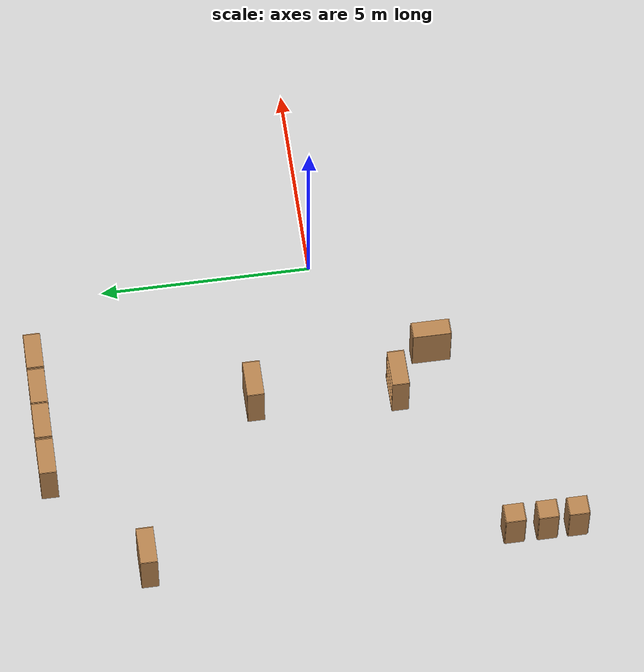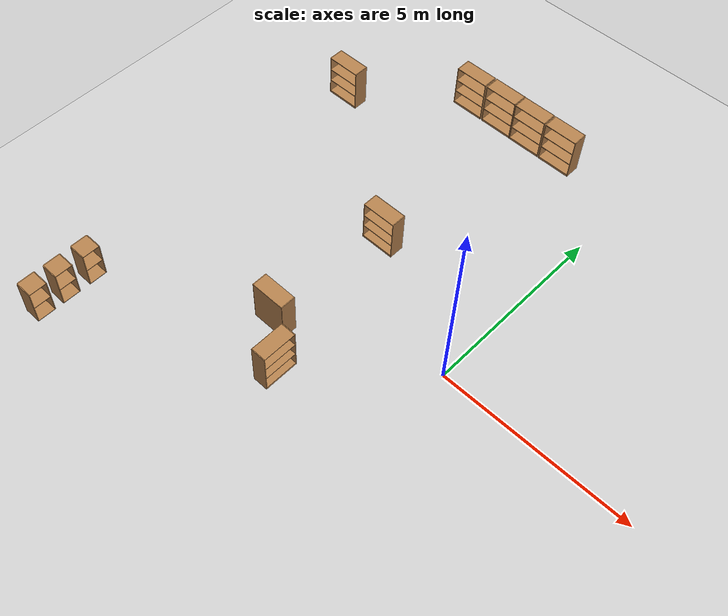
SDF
<sdf version="1.4">
 <world name="world_test_2">
  <model name="ground_plane">
   <static>1</static>
   <link name="link">
    <collision name="collision">
     <geometry><plane><normal>0 0 1</normal><size>100 100</size></plane></geometry>
     <surface><friction><ode><mu>100</mu><mu2>50</mu2></ode></friction></surface>
    </collision>
    <visual name="visual">
     <cast_shadows>0</cast_shadows>
     <geometry><plane><normal>0 0 1</normal><size>100 100</size></plane></geometry>
     <material>
      <script><uri>file://media/materials/scripts/gazebo.material</uri><name>Gazebo/Grey</name></script>
     </material>
    </visual>
    <velocity_decay><linear>0</linear><angular>0</angular></velocity_decay>
   </link>
  </model>
  <model name="bookshelf">
   <static>1</static>
   <link name="link">
    <inertial><mass>1</mass></inertial>
    <collision name="back">
     <pose>0 0.005 0.6 0 -0 0</pose>
     <geometry><box><size>0.9 0.01 1.2</size></box></geometry>
    </collision>
    <visual name="visual1">
     <pose>0 0.005 0.6 0 -0 0</pose>
     <geometry><box><size>0.9 0.01 1.2</size></box></geometry>
     <material>
      <script><uri>file://media/materials/scripts/gazebo.material</uri><name>Gazebo/Wood</name></script>
     </material>
    </visual>
    <collision name="left_side">
     <pose>0.45 -0.195 0.6 0 -0 0</pose>
     <geometry><box><size>0.02 0.4 1.2</size></box></geometry>
    </collision>
    <visual name="visual2">
     <pose>0.45 -0.195 0.6 0 -0 0</pose>
     <geometry><box><size>0.02 0.4 1.2</size></box></geometry>
     <material>
      <script><uri>file://media/materials/scripts/gazebo.material</uri><name>Gazebo/Wood</name></script>
     </material>
    </visual>
    <collision name="right_side">
     <pose>-0.45 -0.195 0.6 0 -0 0</pose>
     <geometry><box><size>0.02 0.4 1.2</size></box></geometry>
    </collision>
    <visual name="visual3">
     <pose>-0.45 -0.195 0.6 0 -0 0</pose>
     <geometry><box><size>0.02 0.4 1.2</size></box></geometry>
     <material>
      <script><uri>file://media/materials/scripts/gazebo.material</uri><name>Gazebo/Wood</name></script>
     </material>
    </visual>
    <collision name="bottom">
     <pose>0 -0.195 0.03 0 -0 0</pose>
     <geometry><box><size>0.88 0.4 0.06</size></box></geometry>
    </collision>
    <visual name="visual4">
     <pose>0 -0.195 0.03 0 -0 0</pose>
     <geometry><box><size>0.88 0.4 0.06</size></box></geometry>
     <material>
      <script><uri>file://media/materials/scripts/gazebo.material</uri><name>Gazebo/Wood</name></script>
     </material>
    </visual>
    <collision name="top">
     <pose>0 -0.195 1.19 0 -0 0</pose>
     <geometry><box><size>0.88 0.4 0.02</size></box></geometry>
    </collision>
    <visual name="visual5">
     <pose>0 -0.195 1.19 0 -0 0</pose>
     <geometry><box><size>0.88 0.4 0.02</size></box></geometry>
     <material>
      <script><uri>file://media/materials/scripts/gazebo.material</uri><name>Gazebo/Wood</name></script>
     </material>
    </visual>
    <collision name="low_shelf">
     <pose>0 -0.195 0.43 0 -0 0</pose>
     <geometry><box><size>0.88 0.4 0.02</size></box></geometry>
    </collision>
    <visual name="visual6">
     <pose>0 -0.195 0.43 0 -0 0</pose>
     <geometry><box><size>0.88 0.4 0.02</size></box></geometry>
     <material>
      <script><uri>file://media/materials/scripts/gazebo.material</uri><name>Gazebo/Wood</name></script>
     </material>
    </visual>
    <collision name="high_shelf">
     <pose>0 -0.195 0.8 0 -0 0</pose>
     <geometry><box><size>0.88 0.4 0.02</size></box></geometry>
    </collision>
    <visual name="visual7">
     <pose>0 -0.195 0.8 0 -0 0</pose>
     <geometry><box><size>0.88 0.4 0.02</size></box></geometry>
     <material>
      <script><uri>file://media/materials/scripts/gazebo.material</uri><name>Gazebo/Wood</name></script>
     </material>
    </visual>
    <velocity_decay><linear>0</linear><angular>0</angular></velocity_decay>
   </link>
   <pose>-3.49372 1.98672 0 0 -0 0</pose>
  </model>
  <model name="bookshelf_0">
   <static>1</static>
   <link name="link">
    <inertial><mass>1</mass></inertial>
    <collision name="back">
     <pose>0 0.005 0.6 0 -0 0</pose>
     <geometry><box><size>0.9 0.01 1.2</size></box></geometry>
    </collision>
    <visual name="visual1">
     <pose>0 0.005 0.6 0 -0 0</pose>
     <geometry><box><size>0.9 0.01 1.2</size></box></geometry>
     <material>
      <script><uri>file://media/materials/scripts/gazebo.material</uri><name>Gazebo/Wood</name></script>
     </material>
    </visual>
    <collision name="left_side">
     <pose>0.45 -0.195 0.6 0 -0 0</pose>
     <geometry><box><size>0.02 0.4 1.2</size></box></geometry>
    </collision>
    <visual name="visual2">
     <pose>0.45 -0.195 0.6 0 -0 0</pose>
     <geometry><box><size>0.02 0.4 1.2</size></box></geometry>
     <material>
      <script><uri>file://media/materials/scripts/gazebo.material</uri><name>Gazebo/Wood</name></script>
     </material>
    </visual>
    <collision name="right_side">
     <pose>-0.45 -0.195 0.6 0 -0 0</pose>
     <geometry><box><size>0.02 0.4 1.2</size></box></geometry>
    </collision>
    <visual name="visual3">
     <pose>-0.45 -0.195 0.6 0 -0 0</pose>
     <geometry><box><size>0.02 0.4 1.2</size></box></geometry>
     <material>
      <script><uri>file://media/materials/scripts/gazebo.material</uri><name>Gazebo/Wood</name></script>
     </material>
    </visual>
    <collision name="bottom">
     <pose>0 -0.195 0.03 0 -0 0</pose>
     <geometry><box><size>0.88 0.4 0.06</size></box></geometry>
    </collision>
    <visual name="visual4">
     <pose>0 -0.195 0.03 0 -0 0</pose>
     <geometry><box><size>0.88 0.4 0.06</size></box></geometry>
     <material>
      <script><uri>file://media/materials/scripts/gazebo.material</uri><name>Gazebo/Wood</name></script>
     </material>
    </visual>
    <collision name="top">
     <pose>0 -0.195 1.19 0 -0 0</pose>
     <geometry><box><size>0.88 0.4 0.02</size></box></geometry>
    </collision>
    <visual name="visual5">
     <pose>0 -0.195 1.19 0 -0 0</pose>
     <geometry><box><size>0.88 0.4 0.02</size></box></geometry>
     <material>
      <script><uri>file://media/materials/scripts/gazebo.material</uri><name>Gazebo/Wood</name></script>
     </material>
    </visual>
    <collision name="low_shelf">
     <pose>0 -0.195 0.43 0 -0 0</pose>
     <geometry><box><size>0.88 0.4 0.02</size></box></geometry>
    </collision>
    <visual name="visual6">
     <pose>0 -0.195 0.43 0 -0 0</pose>
     <geometry><box><size>0.88 0.4 0.02</size></box></geometry>
     <material>
      <script><uri>file://media/materials/scripts/gazebo.material</uri><name>Gazebo/Wood</name></script>
     </material>
    </visual>
    <collision name="high_shelf">
     <pose>0 -0.195 0.8 0 -0 0</pose>
     <geometry><box><size>0.88 0.4 0.02</size></box></geometry>
    </collision>
    <visual name="visual7">
     <pose>0 -0.195 0.8 0 -0 0</pose>
     <geometry><box><size>0.88 0.4 0.02</size></box></geometry>
     <material>
      <script><uri>file://media/materials/scripts/gazebo.material</uri><name>Gazebo/Wood</name></script>
     </material>
    </visual>
    <velocity_decay><linear>0</linear><angular>0</angular></velocity_decay>
   </link>
   <pose>-2.91879 -2.51165 0 0 -0 1.5708</pose>
  </model>
  <model name="bookshelf_1">
   <static>1</static>
   <link name="link">
    <inertial><mass>1</mass></inertial>
    <collision name="back">
     <pose>0 0.005 0.6 0 -0 0</pose>
     <geometry><box><size>0.9 0.01 1.2</size></box></geometry>
    </collision>
    <visual name="visual1">
     <pose>0 0.005 0.6 0 -0 0</pose>
     <geometry><box><size>0.9 0.01 1.2</size></box></geometry>
     <material>
      <script><uri>file://media/materials/scripts/gazebo.material</uri><name>Gazebo/Wood</name></script>
     </material>
    </visual>
    <collision name="left_side">
     <pose>0.45 -0.195 0.6 0 -0 0</pose>
     <geometry><box><size>0.02 0.4 1.2</size></box></geometry>
    </collision>
    <visual name="visual2">
     <pose>0.45 -0.195 0.6 0 -0 0</pose>
     <geometry><box><size>0.02 0.4 1.2</size></box></geometry>
     <material>
      <script><uri>file://media/materials/scripts/gazebo.material</uri><name>Gazebo/Wood</name></script>
     </material>
    </visual>
    <collision name="right_side">
     <pose>-0.45 -0.195 0.6 0 -0 0</pose>
     <geometry><box><size>0.02 0.4 1.2</size></box></geometry>
    </collision>
    <visual name="visual3">
     <pose>-0.45 -0.195 0.6 0 -0 0</pose>
     <geometry><box><size>0.02 0.4 1.2</size></box></geometry>
     <material>
      <script><uri>file://media/materials/scripts/gazebo.material</uri><name>Gazebo/Wood</name></script>
     </material>
    </visual>
    <collision name="bottom">
     <pose>0 -0.195 0.03 0 -0 0</pose>
     <geometry><box><size>0.88 0.4 0.06</size></box></geometry>
    </collision>
    <visual name="visual4">
     <pose>0 -0.195 0.03 0 -0 0</pose>
     <geometry><box><size>0.88 0.4 0.06</size></box></geometry>
     <material>
      <script><uri>file://media/materials/scripts/gazebo.material</uri><name>Gazebo/Wood</name></script>
     </material>
    </visual>
    <collision name="top">
     <pose>0 -0.195 1.19 0 -0 0</pose>
     <geometry><box><size>0.88 0.4 0.02</size></box></geometry>
    </collision>
    <visual name="visual5">
     <pose>0 -0.195 1.19 0 -0 0</pose>
     <geometry><box><size>0.88 0.4 0.02</size></box></geometry>
     <material>
      <script><uri>file://media/materials/scripts/gazebo.material</uri><name>Gazebo/Wood</name></script>
     </material>
    </visual>
    <collision name="low_shelf">
     <pose>0 -0.195 0.43 0 -0 0</pose>
     <geometry><box><size>0.88 0.4 0.02</size></box></geometry>
    </collision>
    <visual name="visual6">
     <pose>0 -0.195 0.43 0 -0 0</pose>
     <geometry><box><size>0.88 0.4 0.02</size></box></geometry>
     <material>
      <script><uri>file://media/materials/scripts/gazebo.material</uri><name>Gazebo/Wood</name></script>
     </material>
    </visual>
    <collision name="high_shelf">
     <pose>0 -0.195 0.8 0 -0 0</pose>
     <geometry><box><size>0.88 0.4 0.02</size></box></geometry>
    </collision>
    <visual name="visual7">
     <pose>0 -0.195 0.8 0 -0 0</pose>
     <geometry><box><size>0.88 0.4 0.02</size></box></geometry>
     <material>
      <script><uri>file://media/materials/scripts/gazebo.material</uri><name>Gazebo/Wood</name></script>
     </material>
    </visual>
    <velocity_decay><linear>0</linear><angular>0</angular></velocity_decay>
   </link>
   <pose>-7.50696 4.96643 0 0 -0 0</pose>
  </model>
  <model name="bookshelf_2">
   <static>1</static>
   <link name="link">
    <inertial><mass>1</mass></inertial>
    <collision name="back">
     <pose>0 0.005 0.6 0 -0 0</pose>
     <geometry><box><size>0.9 0.01 1.2</size></box></geometry>
    </collision>
    <visual name="visual1">
     <pose>0 0.005 0.6 0 -0 0</pose>
     <geometry><box><size>0.9 0.01 1.2</size></box></geometry>
     <material>
      <script><uri>file://media/materials/scripts/gazebo.material</uri><name>Gazebo/Wood</name></script>
     </material>
    </visual>
    <collision name="left_side">
     <pose>0.45 -0.195 0.6 0 -0 0</pose>
     <geometry><box><size>0.02 0.4 1.2</size></box></geometry>
    </collision>
    <visual name="visual2">
     <pose>0.45 -0.195 0.6 0 -0 0</pose>
     <geometry><box><size>0.02 0.4 1.2</size></box></geometry>
     <material>
      <script><uri>file://media/materials/scripts/gazebo.material</uri><name>Gazebo/Wood</name></script>
     </material>
    </visual>
    <collision name="right_side">
     <pose>-0.45 -0.195 0.6 0 -0 0</pose>
     <geometry><box><size>0.02 0.4 1.2</size></box></geometry>
    </collision>
    <visual name="visual3">
     <pose>-0.45 -0.195 0.6 0 -0 0</pose>
     <geometry><box><size>0.02 0.4 1.2</size></box></geometry>
     <material>
      <script><uri>file://media/materials/scripts/gazebo.material</uri><name>Gazebo/Wood</name></script>
     </material>
    </visual>
    <collision name="bottom">
     <pose>0 -0.195 0.03 0 -0 0</pose>
     <geometry><box><size>0.88 0.4 0.06</size></box></geometry>
    </collision>
    <visual name="visual4">
     <pose>0 -0.195 0.03 0 -0 0</pose>
     <geometry><box><size>0.88 0.4 0.06</size></box></geometry>
     <material>
      <script><uri>file://media/materials/scripts/gazebo.material</uri><name>Gazebo/Wood</name></script>
     </material>
    </visual>
    <collision name="top">
     <pose>0 -0.195 1.19 0 -0 0</pose>
     <geometry><box><size>0.88 0.4 0.02</size></box></geometry>
    </collision>
    <visual name="visual5">
     <pose>0 -0.195 1.19 0 -0 0</pose>
     <geometry><box><size>0.88 0.4 0.02</size></box></geometry>
     <material>
      <script><uri>file://media/materials/scripts/gazebo.material</uri><name>Gazebo/Wood</name></script>
     </material>
    </visual>
    <collision name="low_shelf">
     <pose>0 -0.195 0.43 0 -0 0</pose>
     <geometry><box><size>0.88 0.4 0.02</size></box></geometry>
    </collision>
    <visual name="visual6">
     <pose>0 -0.195 0.43 0 -0 0</pose>
     <geometry><box><size>0.88 0.4 0.02</size></box></geometry>
     <material>
      <script><uri>file://media/materials/scripts/gazebo.material</uri><name>Gazebo/Wood</name></script>
     </material>
    </visual>
    <collision name="high_shelf">
     <pose>0 -0.195 0.8 0 -0 0</pose>
     <geometry><box><size>0.88 0.4 0.02</size></box></geometry>
    </collision>
    <visual name="visual7">
     <pose>0 -0.195 0.8 0 -0 0</pose>
     <geometry><box><size>0.88 0.4 0.02</size></box></geometry>
     <material>
      <script><uri>file://media/materials/scripts/gazebo.material</uri><name>Gazebo/Wood</name></script>
     </material>
    </visual>
    <velocity_decay><linear>0</linear><angular>0</angular></velocity_decay>
   </link>
   <pose>-3.67626 -1.78554 0 0 0 -3.14159</pose>
  </model>
  <model name="bookshelf_3">
   <static>1</static>
   <link name="link">
    <inertial><mass>1</mass></inertial>
    <collision name="back">
     <pose>0 0.005 0.6 0 -0 0</pose>
     <geometry><box><size>0.9 0.01 1.2</size></box></geometry>
    </collision>
    <visual name="visual1">
     <pose>0 0.005 0.6 0 -0 0</pose>
     <geometry><box><size>0.9 0.01 1.2</size></box></geometry>
     <material>
      <script><uri>file://media/materials/scripts/gazebo.material</uri><name>Gazebo/Wood</name></script>
     </material>
    </visual>
    <collision name="left_side">
     <pose>0.45 -0.195 0.6 0 -0 0</pose>
     <geometry><box><size>0.02 0.4 1.2</size></box></geometry>
    </collision>
    <visual name="visual2">
     <pose>0.45 -0.195 0.6 0 -0 0</pose>
     <geometry><box><size>0.02 0.4 1.2</size></box></geometry>
     <material>
      <script><uri>file://media/materials/scripts/gazebo.material</uri><name>Gazebo/Wood</name></script>
     </material>
    </visual>
    <collision name="right_side">
     <pose>-0.45 -0.195 0.6 0 -0 0</pose>
     <geometry><box><size>0.02 0.4 1.2</size></box></geometry>
    </collision>
    <visual name="visual3">
     <pose>-0.45 -0.195 0.6 0 -0 0</pose>
     <geometry><box><size>0.02 0.4 1.2</size></box></geometry>
     <material>
      <script><uri>file://media/materials/scripts/gazebo.material</uri><name>Gazebo/Wood</name></script>
     </material>
    </visual>
    <collision name="bottom">
     <pose>0 -0.195 0.03 0 -0 0</pose>
     <geometry><box><size>0.88 0.4 0.06</size></box></geometry>
    </collision>
    <visual name="visual4">
     <pose>0 -0.195 0.03 0 -0 0</pose>
     <geometry><box><size>0.88 0.4 0.06</size></box></geometry>
     <material>
      <script><uri>file://media/materials/scripts/gazebo.material</uri><name>Gazebo/Wood</name></script>
     </material>
    </visual>
    <collision name="top">
     <pose>0 -0.195 1.19 0 -0 0</pose>
     <geometry><box><size>0.88 0.4 0.02</size></box></geometry>
    </collision>
    <visual name="visual5">
     <pose>0 -0.195 1.19 0 -0 0</pose>
     <geometry><box><size>0.88 0.4 0.02</size></box></geometry>
     <material>
      <script><uri>file://media/materials/scripts/gazebo.material</uri><name>Gazebo/Wood</name></script>
     </material>
    </visual>
    <collision name="low_shelf">
     <pose>0 -0.195 0.43 0 -0 0</pose>
     <geometry><box><size>0.88 0.4 0.02</size></box></geometry>
    </collision>
    <visual name="visual6">
     <pose>0 -0.195 0.43 0 -0 0</pose>
     <geometry><box><size>0.88 0.4 0.02</size></box></geometry>
     <material>
      <script><uri>file://media/materials/scripts/gazebo.material</uri><name>Gazebo/Wood</name></script>
     </material>
    </visual>
    <collision name="high_shelf">
     <pose>0 -0.195 0.8 0 -0 0</pose>
     <geometry><box><size>0.88 0.4 0.02</size></box></geometry>
    </collision>
    <visual name="visual7">
     <pose>0 -0.195 0.8 0 -0 0</pose>
     <geometry><box><size>0.88 0.4 0.02</size></box></geometry>
     <material>
      <script><uri>file://media/materials/scripts/gazebo.material</uri><name>Gazebo/Wood</name></script>
     </material>
    </visual>
    <velocity_decay><linear>0</linear><angular>0</angular></velocity_decay>
   </link>
   <pose>-2.04759 6.98349 0 0 -0 0</pose>
  </model>
  <model name="bookshelf_4">
   <static>1</static>
   <link name="link">
    <inertial><mass>1</mass></inertial>
    <collision name="back">
     <pose>0 0.005 0.6 0 -0 0</pose>
     <geometry><box><size>0.9 0.01 1.2</size></box></geometry>
    </collision>
    <visual name="visual1">
     <pose>0 0.005 0.6 0 -0 0</pose>
     <geometry><box><size>0.9 0.01 1.2</size></box></geometry>
     <material>
      <script><uri>file://media/materials/scripts/gazebo.material</uri><name>Gazebo/Wood</name></script>
     </material>
    </visual>
    <collision name="left_side">
     <pose>0.45 -0.195 0.6 0 -0 0</pose>
     <geometry><box><size>0.02 0.4 1.2</size></box></geometry>
    </collision>
    <visual name="visual2">
     <pose>0.45 -0.195 0.6 0 -0 0</pose>
     <geometry><box><size>0.02 0.4 1.2</size></box></geometry>
     <material>
      <script><uri>file://media/materials/scripts/gazebo.material</uri><name>Gazebo/Wood</name></script>
     </material>
    </visual>
    <collision name="right_side">
     <pose>-0.45 -0.195 0.6 0 -0 0</pose>
     <geometry><box><size>0.02 0.4 1.2</size></box></geometry>
    </collision>
    <visual name="visual3">
     <pose>-0.45 -0.195 0.6 0 -0 0</pose>
     <geometry><box><size>0.02 0.4 1.2</size></box></geometry>
     <material>
      <script><uri>file://media/materials/scripts/gazebo.material</uri><name>Gazebo/Wood</name></script>
     </material>
    </visual>
    <collision name="bottom">
     <pose>0 -0.195 0.03 0 -0 0</pose>
     <geometry><box><size>0.88 0.4 0.06</size></box></geometry>
    </collision>
    <visual name="visual4">
     <pose>0 -0.195 0.03 0 -0 0</pose>
     <geometry><box><size>0.88 0.4 0.06</size></box></geometry>
     <material>
      <script><uri>file://media/materials/scripts/gazebo.material</uri><name>Gazebo/Wood</name></script>
     </material>
    </visual>
    <collision name="top">
     <pose>0 -0.195 1.19 0 -0 0</pose>
     <geometry><box><size>0.88 0.4 0.02</size></box></geometry>
    </collision>
    <visual name="visual5">
     <pose>0 -0.195 1.19 0 -0 0</pose>
     <geometry><box><size>0.88 0.4 0.02</size></box></geometry>
     <material>
      <script><uri>file://media/materials/scripts/gazebo.material</uri><name>Gazebo/Wood</name></script>
     </material>
    </visual>
    <collision name="low_shelf">
     <pose>0 -0.195 0.43 0 -0 0</pose>
     <geometry><box><size>0.88 0.4 0.02</size></box></geometry>
    </collision>
    <visual name="visual6">
     <pose>0 -0.195 0.43 0 -0 0</pose>
     <geometry><box><size>0.88 0.4 0.02</size></box></geometry>
     <material>
      <script><uri>file://media/materials/scripts/gazebo.material</uri><name>Gazebo/Wood</name></script>
     </material>
    </visual>
    <collision name="high_shelf">
     <pose>0 -0.195 0.8 0 -0 0</pose>
     <geometry><box><size>0.88 0.4 0.02</size></box></geometry>
    </collision>
    <visual name="visual7">
     <pose>0 -0.195 0.8 0 -0 0</pose>
     <geometry><box><size>0.88 0.4 0.02</size></box></geometry>
     <material>
      <script><uri>file://media/materials/scripts/gazebo.material</uri><name>Gazebo/Wood</name></script>
     </material>
    </visual>
    <velocity_decay><linear>0</linear><angular>0</angular></velocity_decay>
   </link>
   <pose>-2.99588 6.98711 0 0 -0 0</pose>
  </model>
  <model name="bookshelf_5">
   <static>1</static>
   <link name="link">
    <inertial><mass>1</mass></inertial>
    <collision name="back">
     <pose>0 0.005 0.6 0 -0 0</pose>
     <geometry><box><size>0.9 0.01 1.2</size></box></geometry>
    </collision>
    <visual name="visual1">
     <pose>0 0.005 0.6 0 -0 0</pose>
     <geometry><box><size>0.9 0.01 1.2</size></box></geometry>
     <material>
      <script><uri>file://media/materials/scripts/gazebo.material</uri><name>Gazebo/Wood</name></script>
     </material>
    </visual>
    <collision name="left_side">
     <pose>0.45 -0.195 0.6 0 -0 0</pose>
     <geometry><box><size>0.02 0.4 1.2</size></box></geometry>
    </collision>
    <visual name="visual2">
     <pose>0.45 -0.195 0.6 0 -0 0</pose>
     <geometry><box><size>0.02 0.4 1.2</size></box></geometry>
     <material>
      <script><uri>file://media/materials/scripts/gazebo.material</uri><name>Gazebo/Wood</name></script>
     </material>
    </visual>
    <collision name="right_side">
     <pose>-0.45 -0.195 0.6 0 -0 0</pose>
     <geometry><box><size>0.02 0.4 1.2</size></box></geometry>
    </collision>
    <visual name="visual3">
     <pose>-0.45 -0.195 0.6 0 -0 0</pose>
     <geometry><box><size>0.02 0.4 1.2</size></box></geometry>
     <material>
      <script><uri>file://media/materials/scripts/gazebo.material</uri><name>Gazebo/Wood</name></script>
     </material>
    </visual>
    <collision name="bottom">
     <pose>0 -0.195 0.03 0 -0 0</pose>
     <geometry><box><size>0.88 0.4 0.06</size></box></geometry>
    </collision>
    <visual name="visual4">
     <pose>0 -0.195 0.03 0 -0 0</pose>
     <geometry><box><size>0.88 0.4 0.06</size></box></geometry>
     <material>
      <script><uri>file://media/materials/scripts/gazebo.material</uri><name>Gazebo/Wood</name></script>
     </material>
    </visual>
    <collision name="top">
     <pose>0 -0.195 1.19 0 -0 0</pose>
     <geometry><box><size>0.88 0.4 0.02</size></box></geometry>
    </collision>
    <visual name="visual5">
     <pose>0 -0.195 1.19 0 -0 0</pose>
     <geometry><box><size>0.88 0.4 0.02</size></box></geometry>
     <material>
      <script><uri>file://media/materials/scripts/gazebo.material</uri><name>Gazebo/Wood</name></script>
     </material>
    </visual>
    <collision name="low_shelf">
     <pose>0 -0.195 0.43 0 -0 0</pose>
     <geometry><box><size>0.88 0.4 0.02</size></box></geometry>
    </collision>
    <visual name="visual6">
     <pose>0 -0.195 0.43 0 -0 0</pose>
     <geometry><box><size>0.88 0.4 0.02</size></box></geometry>
     <material>
      <script><uri>file://media/materials/scripts/gazebo.material</uri><name>Gazebo/Wood</name></script>
     </material>
    </visual>
    <collision name="high_shelf">
     <pose>0 -0.195 0.8 0 -0 0</pose>
     <geometry><box><size>0.88 0.4 0.02</size></box></geometry>
    </collision>
    <visual name="visual7">
     <pose>0 -0.195 0.8 0 -0 0</pose>
     <geometry><box><size>0.88 0.4 0.02</size></box></geometry>
     <material>
      <script><uri>file://media/materials/scripts/gazebo.material</uri><name>Gazebo/Wood</name></script>
     </material>
    </visual>
    <velocity_decay><linear>0</linear><angular>0</angular></velocity_decay>
   </link>
   <pose>-3.92684 6.99296 0 0 -0 0</pose>
  </model>
  <model name="bookshelf_6">
   <static>1</static>
   <link name="link">
    <inertial><mass>1</mass></inertial>
    <collision name="back">
     <pose>0 0.005 0.6 0 -0 0</pose>
     <geometry><box><size>0.9 0.01 1.2</size></box></geometry>
    </collision>
    <visual name="visual1">
     <pose>0 0.005 0.6 0 -0 0</pose>
     <geometry><box><size>0.9 0.01 1.2</size></box></geometry>
     <material>
      <script><uri>file://media/materials/scripts/gazebo.material</uri><name>Gazebo/Wood</name></script>
     </material>
    </visual>
    <collision name="left_side">
     <pose>0.45 -0.195 0.6 0 -0 0</pose>
     <geometry><box><size>0.02 0.4 1.2</size></box></geometry>
    </collision>
    <visual name="visual2">
     <pose>0.45 -0.195 0.6 0 -0 0</pose>
     <geometry><box><size>0.02 0.4 1.2</size></box></geometry>
     <material>
      <script><uri>file://media/materials/scripts/gazebo.material</uri><name>Gazebo/Wood</name></script>
     </material>
    </visual>
    <collision name="right_side">
     <pose>-0.45 -0.195 0.6 0 -0 0</pose>
     <geometry><box><size>0.02 0.4 1.2</size></box></geometry>
    </collision>
    <visual name="visual3">
     <pose>-0.45 -0.195 0.6 0 -0 0</pose>
     <geometry><box><size>0.02 0.4 1.2</size></box></geometry>
     <material>
      <script><uri>file://media/materials/scripts/gazebo.material</uri><name>Gazebo/Wood</name></script>
     </material>
    </visual>
    <collision name="bottom">
     <pose>0 -0.195 0.03 0 -0 0</pose>
     <geometry><box><size>0.88 0.4 0.06</size></box></geometry>
    </collision>
    <visual name="visual4">
     <pose>0 -0.195 0.03 0 -0 0</pose>
     <geometry><box><size>0.88 0.4 0.06</size></box></geometry>
     <material>
      <script><uri>file://media/materials/scripts/gazebo.material</uri><name>Gazebo/Wood</name></script>
     </material>
    </visual>
    <collision name="top">
     <pose>0 -0.195 1.19 0 -0 0</pose>
     <geometry><box><size>0.88 0.4 0.02</size></box></geometry>
    </collision>
    <visual name="visual5">
     <pose>0 -0.195 1.19 0 -0 0</pose>
     <geometry><box><size>0.88 0.4 0.02</size></box></geometry>
     <material>
      <script><uri>file://media/materials/scripts/gazebo.material</uri><name>Gazebo/Wood</name></script>
     </material>
    </visual>
    <collision name="low_shelf">
     <pose>0 -0.195 0.43 0 -0 0</pose>
     <geometry><box><size>0.88 0.4 0.02</size></box></geometry>
    </collision>
    <visual name="visual6">
     <pose>0 -0.195 0.43 0 -0 0</pose>
     <geometry><box><size>0.88 0.4 0.02</size></box></geometry>
     <material>
      <script><uri>file://media/materials/scripts/gazebo.material</uri><name>Gazebo/Wood</name></script>
     </material>
    </visual>
    <collision name="high_shelf">
     <pose>0 -0.195 0.8 0 -0 0</pose>
     <geometry><box><size>0.88 0.4 0.02</size></box></geometry>
    </collision>
    <visual name="visual7">
     <pose>0 -0.195 0.8 0 -0 0</pose>
     <geometry><box><size>0.88 0.4 0.02</size></box></geometry>
     <material>
      <script><uri>file://media/materials/scripts/gazebo.material</uri><name>Gazebo/Wood</name></script>
     </material>
    </visual>
    <velocity_decay><linear>0</linear><angular>0</angular></velocity_decay>
   </link>
   <pose>-4.88305 6.99057 0 0 -0 0</pose>
  </model>
  <model name="cabinet_4">
   <static>1</static>
   <link name="cabinet_bottom_plate">
    <inertial>
     <pose>0 0 -1 0 -0 0</pose>
     <inertia><ixx>2.05</ixx><ixy>0</ixy><ixz>0</ixz><iyy>2.05</iyy><iyz>0</iyz><izz>2.05</izz></inertia>
     <mass>25</mass>
    </inertial>
    <collision name="cabinet_bottom_plate_geom">
     <pose>0 0 0.01 0 -0 0</pose>
     <geometry><box><size>0.45 0.45 0.02</size></box></geometry>
    </collision>
    <visual name="cabinet_bottom_plate_geom_visual">
     <pose>0 0 0.01 0 -0 0</pose>
     <geometry><box><size>0.45 0.45 0.02</size></box></geometry>
     <material>
      <script><uri>file://media/materials/scripts/gazebo.material</uri><name>Gazebo/Wood</name></script>
     </material>
    </visual>
    <collision name="cabinet_bottom_plate_geom_cabinet_back_plate">
     <pose>0.235 0 0.51 0 -0 0</pose>
     <geometry><box><size>0.02 0.45 1.02</size></box></geometry>
    </collision>
    <visual name="cabinet_bottom_plate_geom_cabinet_back_plate_visual">
     <pose>0.235 0 0.51 0 -0 0</pose>
     <geometry><box><size>0.02 0.45 1.02</size></box></geometry>
     <material>
      <script><uri>file://media/materials/scripts/gazebo.material</uri><name>Gazebo/Wood</name></script>
     </material>
    </visual>
    <collision name="cabinet_bottom_plate_geom_cabinet_left_plate">
     <pose>0 0.235 0.51 0 -0 0</pose>
     <geometry><box><size>0.45 0.02 1.02</size></box></geometry>
    </collision>
    <visual name="cabinet_bottom_plate_geom_cabinet_left_plate_visual">
     <pose>0 0.235 0.51 0 -0 0</pose>
     <geometry><box><size>0.45 0.02 1.02</size></box></geometry>
     <material>
      <script><uri>file://media/materials/scripts/gazebo.material</uri><name>Gazebo/Wood</name></script>
     </material>
    </visual>
    <collision name="cabinet_bottom_plate_geom_cabinet_middle_plate">
     <pose>0 0 0.51 0 -0 0</pose>
     <geometry><box><size>0.45 0.45 0.02</size></box></geometry>
    </collision>
    <visual name="cabinet_bottom_plate_geom_cabinet_middle_plate_visual">
     <pose>0 0 0.51 0 -0 0</pose>
     <geometry><box><size>0.45 0.45 0.02</size></box></geometry>
     <material>
      <script><uri>file://media/materials/scripts/gazebo.material</uri><name>Gazebo/Wood</name></script>
     </material>
    </visual>
    <collision name="cabinet_bottom_plate_geom_cabinet_right_plate">
     <pose>0 -0.235 0.51 0 -0 0</pose>
     <geometry><box><size>0.45 0.02 1.02</size></box></geometry>
    </collision>
    <visual name="cabinet_bottom_plate_geom_cabinet_right_plate_visual">
     <pose>0 -0.235 0.51 0 -0 0</pose>
     <geometry><box><size>0.45 0.02 1.02</size></box></geometry>
     <material>
      <script><uri>file://media/materials/scripts/gazebo.material</uri><name>Gazebo/Wood</name></script>
     </material>
    </visual>
    <collision name="cabinet_bottom_plate_geom_cabinet_top_plate">
     <pose>0 0 1.01 0 -0 0</pose>
     <geometry><box><size>0.45 0.45 0.02</size></box></geometry>
    </collision>
    <visual name="cabinet_bottom_plate_geom_cabinet_top_plate_visual">
     <pose>0 0 1.01 0 -0 0</pose>
     <geometry><box><size>0.45 0.45 0.02</size></box></geometry>
     <material>
      <script><uri>file://media/materials/scripts/gazebo.material</uri><name>Gazebo/Wood</name></script>
     </material>
    </visual>
    <velocity_decay><linear>0</linear><angular>0</angular></velocity_decay>
   </link>
   <pose>-7.74451 -5.15277 0 0 -0 3.14159</pose>
  </model>
  <model name="cabinet_8">
   <static>1</static>
   <link name="cabinet_bottom_plate">
    <inertial>
     <pose>0 0 -1 0 -0 0</pose>
     <inertia><ixx>2.05</ixx><ixy>0</ixy><ixz>0</ixz><iyy>2.05</iyy><iyz>0</iyz><izz>2.05</izz></inertia>
     <mass>25</mass>
    </inertial>
    <collision name="cabinet_bottom_plate_geom">
     <pose>0 0 0.01 0 -0 0</pose>
     <geometry><box><size>0.45 0.45 0.02</size></box></geometry>
    </collision>
    <visual name="cabinet_bottom_plate_geom_visual">
     <pose>0 0 0.01 0 -0 0</pose>
     <geometry><box><size>0.45 0.45 0.02</size></box></geometry>
     <material>
      <script><uri>file://media/materials/scripts/gazebo.material</uri><name>Gazebo/Wood</name></script>
     </material>
    </visual>
    <collision name="cabinet_bottom_plate_geom_cabinet_back_plate">
     <pose>0.235 0 0.51 0 -0 0</pose>
     <geometry><box><size>0.02 0.45 1.02</size></box></geometry>
    </collision>
    <visual name="cabinet_bottom_plate_geom_cabinet_back_plate_visual">
     <pose>0.235 0 0.51 0 -0 0</pose>
     <geometry><box><size>0.02 0.45 1.02</size></box></geometry>
     <material>
      <script><uri>file://media/materials/scripts/gazebo.material</uri><name>Gazebo/Wood</name></script>
     </material>
    </visual>
    <collision name="cabinet_bottom_plate_geom_cabinet_left_plate">
     <pose>0 0.235 0.51 0 -0 0</pose>
     <geometry><box><size>0.45 0.02 1.02</size></box></geometry>
    </collision>
    <visual name="cabinet_bottom_plate_geom_cabinet_left_plate_visual">
     <pose>0 0.235 0.51 0 -0 0</pose>
     <geometry><box><size>0.45 0.02 1.02</size></box></geometry>
     <material>
      <script><uri>file://media/materials/scripts/gazebo.material</uri><name>Gazebo/Wood</name></script>
     </material>
    </visual>
    <collision name="cabinet_bottom_plate_geom_cabinet_middle_plate">
     <pose>0 0 0.51 0 -0 0</pose>
     <geometry><box><size>0.45 0.45 0.02</size></box></geometry>
    </collision>
    <visual name="cabinet_bottom_plate_geom_cabinet_middle_plate_visual">
     <pose>0 0 0.51 0 -0 0</pose>
     <geometry><box><size>0.45 0.45 0.02</size></box></geometry>
     <material>
      <script><uri>file://media/materials/scripts/gazebo.material</uri><name>Gazebo/Wood</name></script>
     </material>
    </visual>
    <collision name="cabinet_bottom_plate_geom_cabinet_right_plate">
     <pose>0 -0.235 0.51 0 -0 0</pose>
     <geometry><box><size>0.45 0.02 1.02</size></box></geometry>
    </collision>
    <visual name="cabinet_bottom_plate_geom_cabinet_right_plate_visual">
     <pose>0 -0.235 0.51 0 -0 0</pose>
     <geometry><box><size>0.45 0.02 1.02</size></box></geometry>
     <material>
      <script><uri>file://media/materials/scripts/gazebo.material</uri><name>Gazebo/Wood</name></script>
     </material>
    </visual>
    <collision name="cabinet_bottom_plate_geom_cabinet_top_plate">
     <pose>0 0 1.01 0 -0 0</pose>
     <geometry><box><size>0.45 0.45 0.02</size></box></geometry>
    </collision>
    <visual name="cabinet_bottom_plate_geom_cabinet_top_plate_visual">
     <pose>0 0 1.01 0 -0 0</pose>
     <geometry><box><size>0.45 0.45 0.02</size></box></geometry>
     <material>
      <script><uri>file://media/materials/scripts/gazebo.material</uri><name>Gazebo/Wood</name></script>
     </material>
    </visual>
    <velocity_decay><linear>0</linear><angular>0</angular></velocity_decay>
   </link>
   <pose>-7.73905 -4.44276 0 0 -0 3.14159</pose>
  </model>
  <model name="cabinet_9">
   <static>1</static>
   <link name="cabinet_bottom_plate">
    <inertial>
     <pose>0 0 -1 0 -0 0</pose>
     <inertia><ixx>2.05</ixx><ixy>0</ixy><ixz>0</ixz><iyy>2.05</iyy><iyz>0</iyz><izz>2.05</izz></inertia>
     <mass>25</mass>
    </inertial>
    <collision name="cabinet_bottom_plate_geom">
     <pose>0 0 0.01 0 -0 0</pose>
     <geometry><box><size>0.45 0.45 0.02</size></box></geometry>
    </collision>
    <visual name="cabinet_bottom_plate_geom_visual">
     <pose>0 0 0.01 0 -0 0</pose>
     <geometry><box><size>0.45 0.45 0.02</size></box></geometry>
     <material>
      <script><uri>file://media/materials/scripts/gazebo.material</uri><name>Gazebo/Wood</name></script>
     </material>
    </visual>
    <collision name="cabinet_bottom_plate_geom_cabinet_back_plate">
     <pose>0.235 0 0.51 0 -0 0</pose>
     <geometry><box><size>0.02 0.45 1.02</size></box></geometry>
    </collision>
    <visual name="cabinet_bottom_plate_geom_cabinet_back_plate_visual">
     <pose>0.235 0 0.51 0 -0 0</pose>
     <geometry><box><size>0.02 0.45 1.02</size></box></geometry>
     <material>
      <script><uri>file://media/materials/scripts/gazebo.material</uri><name>Gazebo/Wood</name></script>
     </material>
    </visual>
    <collision name="cabinet_bottom_plate_geom_cabinet_left_plate">
     <pose>0 0.235 0.51 0 -0 0</pose>
     <geometry><box><size>0.45 0.02 1.02</size></box></geometry>
    </collision>
    <visual name="cabinet_bottom_plate_geom_cabinet_left_plate_visual">
     <pose>0 0.235 0.51 0 -0 0</pose>
     <geometry><box><size>0.45 0.02 1.02</size></box></geometry>
     <material>
      <script><uri>file://media/materials/scripts/gazebo.material</uri><name>Gazebo/Wood</name></script>
     </material>
    </visual>
    <collision name="cabinet_bottom_plate_geom_cabinet_middle_plate">
     <pose>0 0 0.51 0 -0 0</pose>
     <geometry><box><size>0.45 0.45 0.02</size></box></geometry>
    </collision>
    <visual name="cabinet_bottom_plate_geom_cabinet_middle_plate_visual">
     <pose>0 0 0.51 0 -0 0</pose>
     <geometry><box><size>0.45 0.45 0.02</size></box></geometry>
     <material>
      <script><uri>file://media/materials/scripts/gazebo.material</uri><name>Gazebo/Wood</name></script>
     </material>
    </visual>
    <collision name="cabinet_bottom_plate_geom_cabinet_right_plate">
     <pose>0 -0.235 0.51 0 -0 0</pose>
     <geometry><box><size>0.45 0.02 1.02</size></box></geometry>
    </collision>
    <visual name="cabinet_bottom_plate_geom_cabinet_right_plate_visual">
     <pose>0 -0.235 0.51 0 -0 0</pose>
     <geometry><box><size>0.45 0.02 1.02</size></box></geometry>
     <material>
      <script><uri>file://media/materials/scripts/gazebo.material</uri><name>Gazebo/Wood</name></script>
     </material>
    </visual>
    <collision name="cabinet_bottom_plate_geom_cabinet_top_plate">
     <pose>0 0 1.01 0 -0 0</pose>
     <geometry><box><size>0.45 0.45 0.02</size></box></geometry>
    </collision>
    <visual name="cabinet_bottom_plate_geom_cabinet_top_plate_visual">
     <pose>0 0 1.01 0 -0 0</pose>
     <geometry><box><size>0.45 0.45 0.02</size></box></geometry>
     <material>
      <script><uri>file://media/materials/scripts/gazebo.material</uri><name>Gazebo/Wood</name></script>
     </material>
    </visual>
    <velocity_decay><linear>0</linear><angular>0</angular></velocity_decay>
   </link>
   <pose>-7.73206 -3.6758 0 0 -0 3.14159</pose>
  </model>
 </world>
</sdf>
